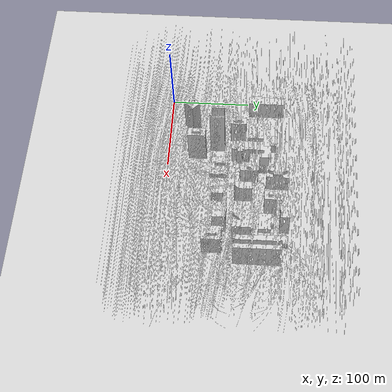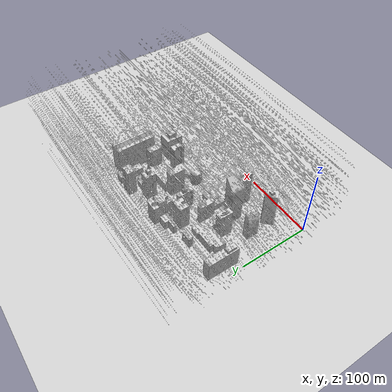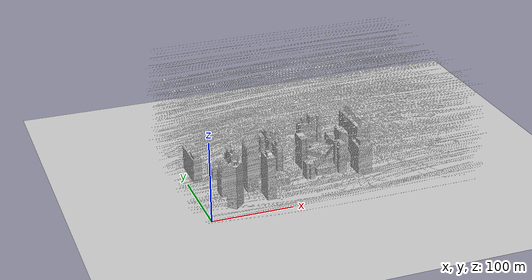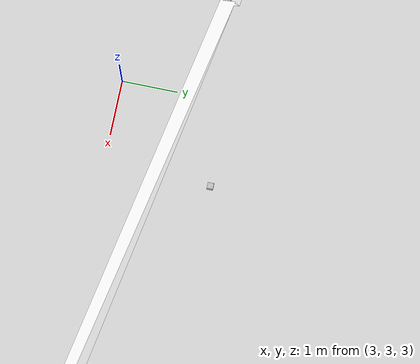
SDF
<?xml version="1.0" ?>
<sdf version="1.9">
  <world name="map">
    <physics name="1ms" type="ignore">
      <max_step_size>0.001</max_step_size>
      <real_time_factor>1.0</real_time_factor>
    </physics>

    <plugin name="gz::sim::systems::Physics"
      filename="gz-sim-physics-system">
    </plugin>
    <plugin name="gz::sim::systems::Sensors"
      filename="gz-sim-sensors-system">
      <render_engine>ogre2</render_engine>
    </plugin>
    <plugin name="gz::sim::systems::UserCommands"
      filename="gz-sim-user-commands-system">
    </plugin>
    <plugin name="gz::sim::systems::SceneBroadcaster"
      filename="gz-sim-scene-broadcaster-system">
    </plugin>
    <plugin name="gz::sim::systems::Imu"
      filename="gz-sim-imu-system">
    </plugin>

    <plugin name="gz::sim::systems::EnvironmentPreload"
      filename="gz-sim-environment-preload-system">
      <data>wind_around_buildings_n=40.csv</data>
      <dimensions>
        <ignore_time>1</ignore_time>
        <time>timestamp</time>
        <space>
          <x>x</x>
          <y>y</y>
          <z>z</z>
        </space>
      </dimensions>
    </plugin>

    <plugin name="gz::sim::systems::EnvironmentalSystem"
      filename="gz-sim-environmental-sensor-system">
    </plugin>

    <scene>
      <ambient>1.0 1.0 1.0</ambient>
      <background>0.8 0.8 0.8</background>
      <sky></sky>
    </scene>

    <light type="directional" name="sun">
      <cast_shadows>true</cast_shadows>
      <pose>0 0 10 0 0 0</pose>
      <diffuse>0.8 0.8 0.8 1</diffuse>
      <specular>0.8 0.8 0.8 1</specular>
      <attenuation>
        <range>1000</range>
        <constant>0.9</constant>
        <linear>0.01</linear>
        <quadratic>0.001</quadratic>
      </attenuation>
      <direction>-0.5 0.1 -0.9</direction>
    </light>

    <model name="ground_plane">
      <static>true</static>
      <link name="link">
        <collision name="collision">
          <geometry>
            <plane>
              <normal>0 0 1</normal>
              <size>1000 1000</size>
            </plane>
          </geometry>
        </collision>
        <visual name="visual">
          <geometry>
            <plane>
              <normal>0 0 1</normal>
              <size>1000 1000</size>
            </plane>
          </geometry>
          <material>
            <ambient>0.8 0.8 0.8 1</ambient>
            <diffuse>0.8 0.8 0.8 1</diffuse>
            <specular>0.8 0.8 0.8 1</specular>
          </material>
        </visual>
      </link>
    </model>

    <model name="buildings">
      <static>1</static>
      <link name="terrain">
        <collision name="collision">
          <geometry>
            <mesh>
              <uri>buildings/buildings_v1.dae</uri>
            </mesh>
          </geometry>
        </collision>
        <visual name="visual">
          <geometry>
            <mesh>
              <uri>buildings/buildings_v1.dae</uri>
            </mesh>
          </geometry>
        </visual>
        <visual name="visual_streamlines">
          <cast_shadows>0</cast_shadows>
          <geometry>
            <mesh>
              <uri>buildings/buildings_streamlines.dae</uri>
            </mesh>
          </geometry>
          <material>
            <ambient>1 1 1 1</ambient>
            <diffuse>1 1 1 1</diffuse>
            <specular>1 1 1 1</specular>
            <pbr>
              <metal>
                  <albedo_map>buildings/Image_0.png</albedo_map>
                  <metalness>0.1</metalness>
              </metal>
            </pbr>
          </material>
        </visual>
      </link>
    </model>

    <model name="model_with_sensor">
      <static>1</static>
      <pose>5 5 5 0 0 0</pose>
      <link name="link">
        <inertial>
          <mass>0.1</mass>
          <inertia>
            <ixx>0.000166667</ixx>
            <iyy>0.000166667</iyy>
            <izz>0.000166667</izz>
          </inertia>
        </inertial>
        <collision name="collision">
          <geometry>
            <box>
              <size>0.1 0.1 0.1</size>
            </box>
          </geometry>
        </collision>
        <visual name="visual">
          <geometry>
            <box>
              <size>0.1 0.1 0.1</size>
            </box>
          </geometry>
        </visual>
        <sensor name="wind_3d" type="custom" gz:type="environmental_sensor/wind_speed_3d">
          <always_on>1</always_on>
          <update_rate>30</update_rate>
          <visualize>1</visualize>
          <topic>sensors/wind_speed_3d</topic>
          <output_format>vector3</output_format>
          <environment_variable_x>wind_speed_x</environment_variable_x>
          <environment_variable_y>wind_speed_y</environment_variable_y>
          <environment_variable_z>wind_speed_z</environment_variable_z>
          <transform_type>GLOBAL</transform_type>
        </sensor>
      </link>
    </model>

  </world>
</sdf>
